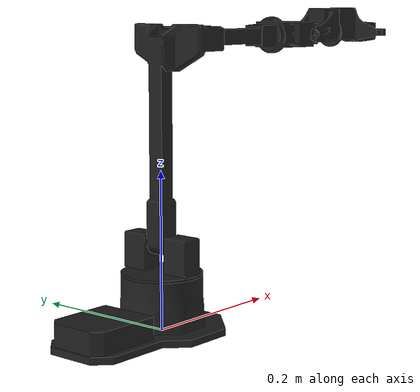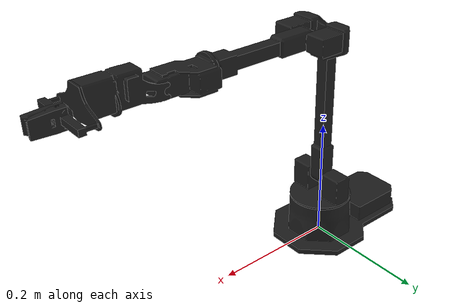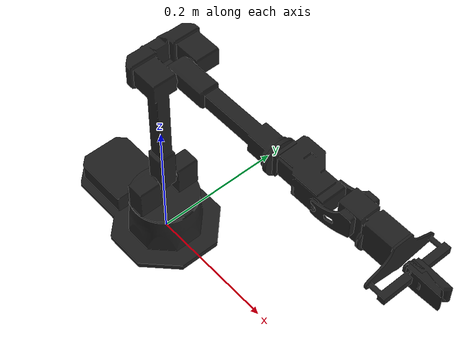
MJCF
<mujoco model="wx250s">
  <compiler angle="radian" meshdir="assets" texturedir="assets" autolimits="true"/>

  <option integrator="implicitfast" cone="elliptic" impratio="10"/>

  <asset>
    <texture type="2d" file="interbotix_black.png"/>
    <material name="black" texture="interbotix_black"/>

    <mesh file="wx250s_1_base.stl" class="wx250s"/>
    <mesh file="wx250s_2_shoulder.stl" class="wx250s"/>
    <mesh file="wx250s_3_upper_arm.stl" class="wx250s"/>
    <mesh file="wx250s_4_upper_forearm.stl" class="wx250s"/>
    <mesh file="wx250s_5_lower_forearm.stl" class="wx250s"/>
    <mesh file="wx250s_6_wrist.stl" class="wx250s"/>
    <mesh file="wx250s_7_gripper.stl" class="wx250s"/>
    <mesh file="wx250s_8_gripper_prop.stl" class="wx250s"/>
    <mesh file="wx250s_9_gripper_bar.stl" class="wx250s"/>
    <mesh file="wx250s_10_gripper_finger.stl" class="wx250s"/>
  </asset>

  <default>
    <default class="wx250s">
      <mesh scale="0.001 0.001 0.001"/>
      <joint axis="0 1 0" frictionloss="0.1" armature="0.1"/>
      <position kp="50" inheritrange="1" dampratio="0.95" forcerange="-35 35"/>
      <default class="visual">
        <geom type="mesh" contype="0" conaffinity="0" density="0" group="2" material="black"/>
      </default>
      <default class="collision">
        <geom group="3" type="mesh"/>
        <default class="sphere_collision">
          <geom type="sphere" size="0.0006" rgba="1 0 0 1"/>
        </default>
      </default>
    </default>
  </default>

  <worldbody>
    <!-- removed light temporarily, can add back later if needed -->
    <body name="wx250s_base_link" childclass="wx250s">
      <inertial pos="-0.0380446 0.000613892 0.0193354" quat="0.509292 0.490887 -0.496359 0.503269" mass="0.538736"
        diaginertia="0.00252518 0.00211519 0.000690737"/>
      <geom quat="1 0 0 1" mesh="wx250s_1_base" class="visual"/>
      <geom quat="1 0 0 1" mesh="wx250s_1_base" class="collision"/>
      <body name="wx250s_shoulder_link" pos="0 0 0.072">
        <inertial pos="2.23482e-05 4.14609e-05 0.0066287" quat="0.0130352 0.706387 0.012996 0.707586" mass="0.480879"
          diaginertia="0.000588946 0.000555655 0.000378999"/>
        <joint name="waist" axis="0 0 1" range="-3.14158 3.14158"/>
        <geom pos="0 0 -0.003" quat="1 0 0 1" mesh="wx250s_2_shoulder" class="visual"/>
        <geom pos="0 0 -0.003" quat="1 0 0 1" mesh="wx250s_2_shoulder" class="collision"/>
        <body name="wx250s_upper_arm_link" pos="0 0 0.03865">
          <inertial pos="0.0171605 2.725e-07 0.191323" quat="0.705539 0.0470667 -0.0470667 0.705539" mass="0.430811"
            diaginertia="0.00364425 0.003463 0.000399348"/>
          <joint name="shoulder" range="-1.88496 1.98968"/>
          <geom quat="1 0 0 1" mesh="wx250s_3_upper_arm" class="visual"/>
          <geom quat="1 0 0 1" mesh="wx250s_3_upper_arm" class="collision"/>
          <body name="wx250s_upper_forearm_link" pos="0.04975 0 0.25">
            <inertial pos="0.107963 0.000115876 0" quat="0.000980829 0.707106 -0.000980829 0.707106" mass="0.234589"
              diaginertia="0.000888 0.000887807 3.97035e-05"/>
            <joint name="elbow" range="-2.14675 1.6057"/>
            <geom mesh="wx250s_4_upper_forearm" class="visual"/>
            <geom mesh="wx250s_4_upper_forearm" class="collision"/>
            <body name="wx250s_lower_forearm_link" pos="0.175 0 0">
              <inertial pos="0.0374395 0.00522252 0" quat="-0.0732511 0.703302 0.0732511 0.703302" mass="0.220991"
                diaginertia="0.0001834 0.000172527 5.88633e-05"/>
              <joint name="forearm_roll" axis="1 0 0" range="-3.14158 3.14158"/>
              <geom quat="0 1 0 0" mesh="wx250s_5_lower_forearm" class="visual"/>
              <geom quat="0 1 0 0" mesh="wx250s_5_lower_forearm" class="collision"/>
              <body name="wx250s_wrist_link" pos="0.075 0 0">
                <inertial pos="0.04236 -1.0663e-05 0.010577" quat="0.608721 0.363497 -0.359175 0.606895" mass="0.084957"
                  diaginertia="3.29057e-05 3.082e-05 2.68343e-05"/>
                <joint name="wrist_angle" axis="0 1 0" range="-1.74533 2.14675"/>
                <geom quat="1 0 0 1" mesh="wx250s_6_wrist" class="visual"/>
                <geom quat="1 0 0 1" mesh="wx250s_6_wrist" class="collision"/>
                <body name="wx250s_gripper_link" pos="0.065 0 0">
                  <inertial pos="0.0325296 4.2061e-07 0.0090959" quat="0.546081 0.419626 0.62801 0.362371"
                    mass="0.110084" diaginertia="0.00307592 0.00307326 0.0030332"/>
                  <joint name="wrist_rotate" axis="1 0 0" range="-3.14158 3.14158"/>
                  <geom pos="-0.02 0 0" quat="1 0 0 1" mesh="wx250s_7_gripper" class="visual"/>
                  <geom pos="-0.02 0 0" quat="1 0 0 1" mesh="wx250s_7_gripper" class="collision"/>
                  <geom pos="-0.02 0 0" quat="1 0 0 1" mesh="wx250s_9_gripper_bar" class="visual"/>
                  <geom pos="-0.02 0 0" quat="1 0 0 1" mesh="wx250s_9_gripper_bar" class="collision"/>
                  <site name="pinch_site" pos="0.1 0 0" size="0.005" rgba="0.6 0.3 0.3 1" group="5"/>
                  <site name="attachment_site" pos="0.1 0 0" size="0.005" rgba="0.6 0.3 0.3 1" group="5"/>
                  <body name="wx250s_left_finger_link" pos="0.066 0 0">
                    <inertial pos="0.013816 0 0" quat="0.705384 0.705384 -0.0493271 -0.0493271" mass="0.016246"
                      diaginertia="4.79509e-06 3.7467e-06 1.48651e-06"/>
                    <joint name="left_finger" axis="0 1 0" type="slide" range="0.015 0.037"/>
                    <geom pos="0 0.005 0" quat="0 0 0 -1" mesh="wx250s_10_gripper_finger" class="visual"/>
                    <geom pos="0 0.005 0" quat="0 0 0 -1" mesh="wx250s_10_gripper_finger" class="collision"/>
                    <geom name="left_left_g0" pos="0.042 -0.009 0.012" class="sphere_collision"/>
                    <geom name="left_left_g1" pos="0.042 -0.009 -0.012" class="sphere_collision"/>
                  </body>
                  <body name="wx250s_right_finger_link" pos="0.066 0 0">
                    <inertial pos="0.013816 0 0" quat="0.705384 0.705384 0.0493271 0.0493271" mass="0.016246"
                      diaginertia="4.79509e-06 3.7467e-06 1.48651e-06"/>
                    <joint name="right_finger" axis="0 1 0" type="slide" range="-0.037 -0.015"/>
                    <geom pos="0 -0.005 0" quat="0 0 1 0" mesh="wx250s_10_gripper_finger" class="visual"/>
                    <geom pos="0 -0.005 0" quat="0 0 1 0" mesh="wx250s_10_gripper_finger" class="collision"/>
                    <geom name="right_right_g0" pos="0.042 0.009 0.012" class="sphere_collision"/>
                    <geom name="right_right_g1" pos="0.042 0.009 -0.012" class="sphere_collision"/>
                  </body>
                </body>
              </body>
            </body>
          </body>
        </body>
      </body>
    </body>
  </worldbody>

  <contact>
    <exclude body1="wx250s_base_link" body2="wx250s_shoulder_link"/>
  </contact>

  <equality>
    <joint joint1="left_finger" joint2="right_finger" polycoef="0 -1 0 0 0"/>
  </equality>

  <!-- Actuators removed as OSC directly computes joint torques -->

</mujoco>
